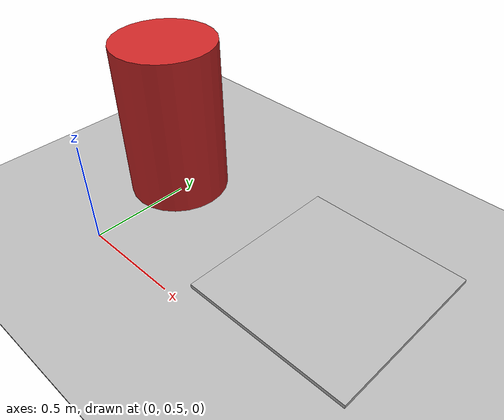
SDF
<sdf version="1.7">
 <world name="default">
  <physics type="ode">
   <ode>
    <solver>
     <type>quick</type>
     <iters>10</iters>
     <sor>1.3</sor>
     <use_dynamic_moi_rescaling>0</use_dynamic_moi_rescaling>
    </solver>
    <constraints>
     <cfm>1e-05</cfm>
     <erp>0.2</erp>
     <contact_max_correcting_vel>1000</contact_max_correcting_vel>
     <contact_surface_layer>0.01</contact_surface_layer>
    </constraints>
   </ode>
   <max_step_size>0.004</max_step_size>
   <real_time_factor>1</real_time_factor>
   <real_time_update_rate>250</real_time_update_rate>
  </physics>
  <light name="sun" type="directional">
   <cast_shadows>0</cast_shadows>
   <pose>0 0 100 0 -0 0</pose>
   <diffuse>0.8 0.8 0.8 1</diffuse>
   <specular>0.9 0.9 0.9 1</specular>
   <attenuation>
    <range>1000</range>
    <constant>0.9</constant>
    <linear>0.01</linear>
    <quadratic>0.001</quadratic>
   </attenuation>
   <direction>0.2 0.2 -0.9</direction>
   <spot><inner_angle>0</inner_angle><outer_angle>0</outer_angle><falloff>0</falloff></spot>
  </light>
  <scene><shadows>0</shadows><ambient>0.4 0.4 0.4 1</ambient><background>0.7 0.7 0.7 1</background></scene>
  <model name="ground_plane">
   <static>1</static>
   <link name="link">
    <collision name="collision">
     <geometry><plane><normal>0 0 1</normal><size>100 100</size></plane></geometry>
     <surface>
      <contact><collide_bitmask>65535</collide_bitmask></contact>
      <friction><ode><mu>100</mu><mu2>50</mu2></ode></friction>
     </surface>
    </collision>
    <visual name="visual">
     <cast_shadows>0</cast_shadows>
     <geometry><plane><normal>0 0 1</normal><size>100 100</size></plane></geometry>
     <material>
      <script><uri>file://media/materials/scripts/gazebo.material</uri><name>Gazebo/Grey</name></script>
     </material>
    </visual>
   </link>
  </model>
  <model name="yundrone_logo">
   <static>1</static>
   <link name="yundrone_logo">
    <visual name="visual">
     <cast_shadows>0</cast_shadows>
     <geometry><box><size>20 20 0.01</size></box></geometry>
     <material>
      <script><uri>model://yundrone_logo/yundrone_logo.material</uri><name>yundrone_logo</name></script>
     </material>
    </visual>
   </link>
  </model>
  <model name="land_aruco">
   <static>1</static>
   <link name="land_aruco">
    <pose>1 1 0.02 0 -0 0</pose>
    <collision name="platform_collision">
     <geometry><box><size>0.48 0.48 0.01</size></box></geometry>
     <surface><friction><ode><mu>1</mu><mu2>1</mu2></ode></friction></surface>
    </collision>
    <visual name="visual">
     <cast_shadows>0</cast_shadows>
     <geometry><box><size>0.84 0.84 0.02</size></box></geometry>
     <material><script><uri>model://land_aruco/land_aruco.material</uri><name>land_aruco</name></script></material>
    </visual>
   </link>
  </model>
  <gravity>0 0 -9.8066</gravity>
  <magnetic_field>6e-06 2.3e-05 -4.2e-05</magnetic_field>
  <atmosphere type="adiabatic"/>
  <spherical_coordinates>
   <surface_model>EARTH_WGS84</surface_model>
   <latitude_deg>0</latitude_deg>
   <longitude_deg>0</longitude_deg>
   <elevation>0</elevation>
   <heading_deg>0</heading_deg>
  </spherical_coordinates>
  <model name="cylinder_25cm">
   <static>1</static>
   <link name="link">
    <visual name="visual">
     <geometry><cylinder><radius>0.25</radius><length>2</length></cylinder></geometry>
     <material>
      <script><uri>file://media/materials/scripts/gazebo.material</uri><name>Gazebo/Red</name></script>
     </material>
    </visual>
    <collision name="collision">
     <geometry><cylinder><radius>0.25</radius><length>2</length></cylinder></geometry>
    </collision>
    <inertial>
     <mass>1</mass>
     <inertia><ixx>0.3358</ixx><ixy>0</ixy><ixz>0</ixz><iyy>0.3358</iyy><iyz>0</iyz><izz>0.005</izz></inertia>
    </inertial>
   </link>
   <pose>-0.04857 1.03897 -0.208858 0 -0 0</pose>
  </model>
 </world>
</sdf>
